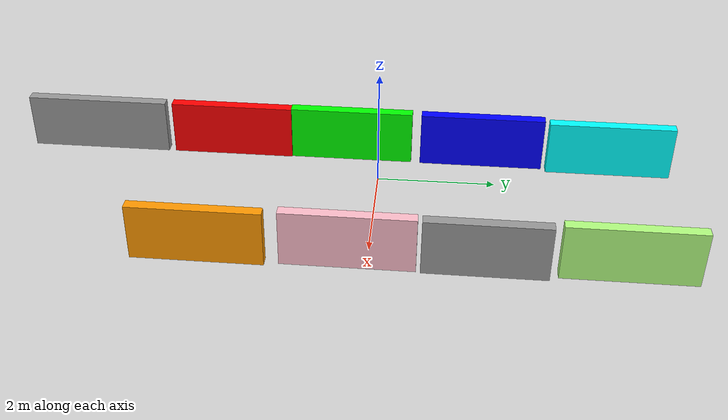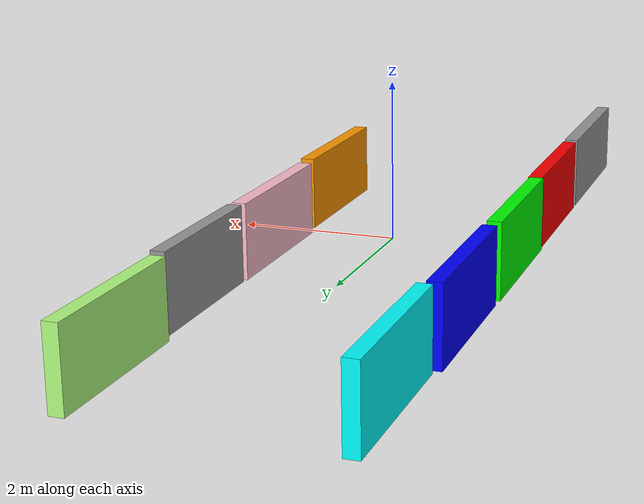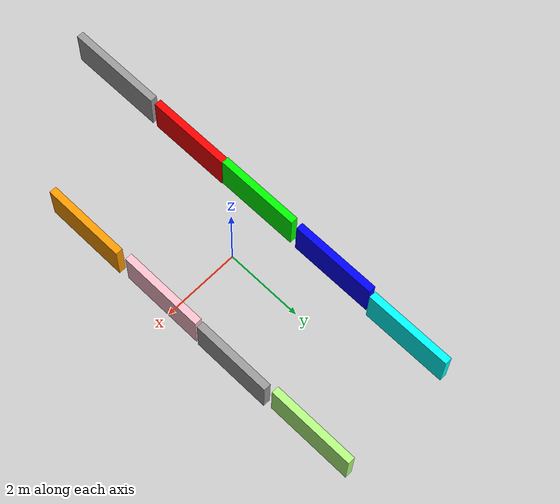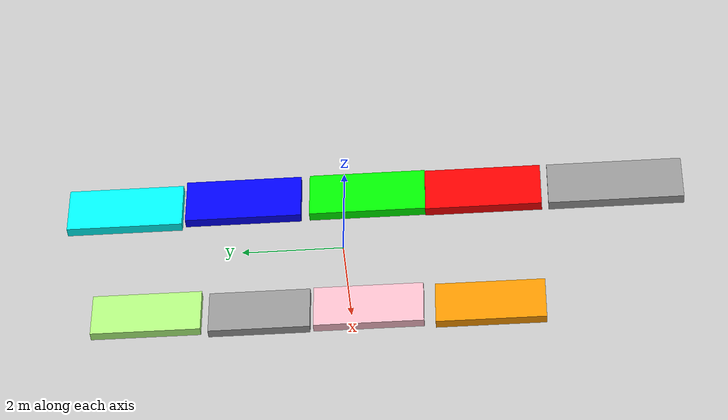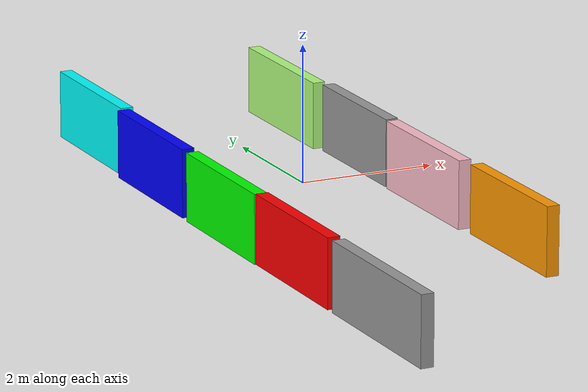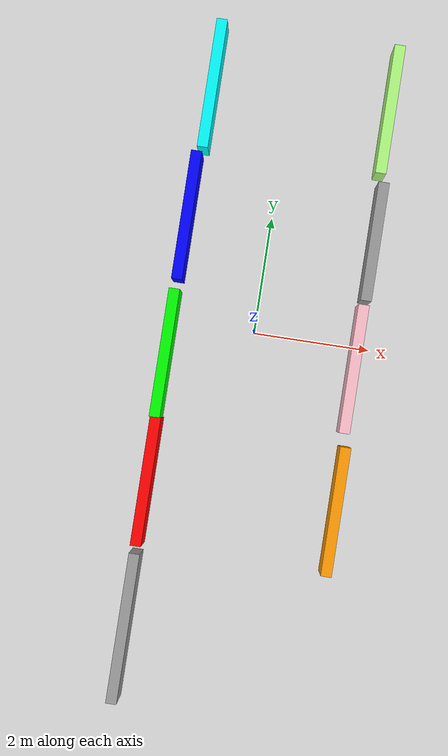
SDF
<?xml version='1.0'?>
<sdf version='1.7'>
  <model name='colored'>
    <model name='new_hospital_colored'>
      <link name='link_0'>
        <inertial>
          <mass>0.414748</mass>
          <inertia>
            <ixx>0.204858</ixx>
            <ixy>0</ixy>
            <ixz>0</ixz>
            <iyy>0.0357692</iyy>
            <iyz>0</iyz>
            <izz>0.171503</izz>
          </inertia>
          <pose>0 0 0 0 -0 0</pose>
        </inertial>
        <pose>1.84226 -2.81221 -5e-06 0 -0 0</pose>
        <self_collide>0</self_collide>
        <enable_wind>0</enable_wind>
        <kinematic>0</kinematic>
        <gravity>1</gravity>
        <visual name='visual'>
          <pose>0 0 0 0 -0 0</pose>
          <geometry>
            <box>
              <size>0.186869 2.21973 1</size>
            </box>
          </geometry>
          <material>
            <lighting>1</lighting>
            <script>
              <uri>file://media/materials/scripts/gazebo.material</uri>
              <name>Gazebo/Grey</name>
            </script>
            <shader type='pixel'>
              <normal_map>__default__</normal_map>
            </shader>
            <ambient>1 0.6 0 1</ambient>
            <diffuse>1 0.6 0 1</diffuse>
            <specular>1 0.6 0 1</specular>
            <emissive>0 0 0 1</emissive>
          </material>
          <transparency>0</transparency>
          <cast_shadows>1</cast_shadows>
        </visual>
        <collision name='collision'>
          <laser_retro>0</laser_retro>
          <max_contacts>10</max_contacts>
          <pose>0 0 0 0 -0 0</pose>
          <geometry>
            <box>
              <size>0.186869 2.21973 1</size>
            </box>
          </geometry>
          <surface>
            <friction>
              <ode>
                <mu>1</mu>
                <mu2>1</mu2>
                <fdir1>0 0 0</fdir1>
                <slip1>0</slip1>
                <slip2>0</slip2>
              </ode>
              <torsional>
                <coefficient>1</coefficient>
                <patch_radius>0</patch_radius>
                <surface_radius>0</surface_radius>
                <use_patch_radius>1</use_patch_radius>
                <ode>
                  <slip>0</slip>
                </ode>
              </torsional>
            </friction>
            <bounce>
              <restitution_coefficient>0</restitution_coefficient>
              <threshold>1e+06</threshold>
            </bounce>
            <contact>
              <collide_without_contact>0</collide_without_contact>
              <collide_without_contact_bitmask>1</collide_without_contact_bitmask>
              <collide_bitmask>1</collide_bitmask>
              <ode>
                <soft_cfm>0</soft_cfm>
                <soft_erp>0.2</soft_erp>
                <kp>1e+13</kp>
                <kd>1</kd>
                <max_vel>0.01</max_vel>
                <min_depth>0</min_depth>
              </ode>
              <bullet>
                <split_impulse>1</split_impulse>
                <split_impulse_penetration_threshold>-0.01</split_impulse_penetration_threshold>
                <soft_cfm>0</soft_cfm>
                <soft_erp>0.2</soft_erp>
                <kp>1e+13</kp>
                <kd>1</kd>
              </bullet>
            </contact>
          </surface>
        </collision>
      </link>
      <link name='link_0_clone'>
        <inertial>
          <mass>0.414748</mass>
          <inertia>
            <ixx>0.204858</ixx>
            <ixy>0</ixy>
            <ixz>0</ixz>
            <iyy>0.0357692</iyy>
            <iyz>0</iyz>
            <izz>0.171503</izz>
          </inertia>
          <pose>0 0 0 0 -0 0</pose>
        </inertial>
        <pose>1.7803 -0.361314 0 0 -0 0</pose>
        <gravity>1</gravity>
        <self_collide>0</self_collide>
        <kinematic>0</kinematic>
        <enable_wind>0</enable_wind>
        <visual name='visual'>
          <pose>0 0 0 0 -0 0</pose>
          <geometry>
            <box>
              <size>0.186869 2.21973 1</size>
            </box>
          </geometry>
          <material>
            <lighting>1</lighting>
            <script>
              <uri>file://media/materials/scripts/gazebo.material</uri>
              <name>Gazebo/Grey</name>
            </script>
            <shader type='pixel'>
              <normal_map>__default__</normal_map>
            </shader>
            <ambient>1 0.75 0.8 0</ambient>
            <diffuse>1 0.75 0.8 1</diffuse>
            <specular>1 0.75 0.8 1</specular>
            <emissive>0.8 0 0 1</emissive>
          </material>
          <transparency>0</transparency>
          <cast_shadows>1</cast_shadows>
        </visual>
        <collision name='collision'>
          <laser_retro>0</laser_retro>
          <max_contacts>10</max_contacts>
          <pose>0 0 0 0 -0 0</pose>
          <geometry>
            <box>
              <size>0.186869 2.21973 1</size>
            </box>
          </geometry>
          <surface>
            <friction>
              <ode>
                <mu>1</mu>
                <mu2>1</mu2>
                <fdir1>0 0 0</fdir1>
                <slip1>0</slip1>
                <slip2>0</slip2>
              </ode>
              <torsional>
                <coefficient>1</coefficient>
                <patch_radius>0</patch_radius>
                <surface_radius>0</surface_radius>
                <use_patch_radius>1</use_patch_radius>
                <ode>
                  <slip>0</slip>
                </ode>
              </torsional>
            </friction>
            <bounce>
              <restitution_coefficient>0</restitution_coefficient>
              <threshold>1e+06</threshold>
            </bounce>
            <contact>
              <collide_without_contact>0</collide_without_contact>
              <collide_without_contact_bitmask>1</collide_without_contact_bitmask>
              <collide_bitmask>1</collide_bitmask>
              <ode>
                <soft_cfm>0</soft_cfm>
                <soft_erp>0.2</soft_erp>
                <kp>1e+13</kp>
                <kd>1</kd>
                <max_vel>0.01</max_vel>
                <min_depth>0</min_depth>
              </ode>
              <bullet>
                <split_impulse>1</split_impulse>
                <split_impulse_penetration_threshold>-0.01</split_impulse_penetration_threshold>
                <soft_cfm>0</soft_cfm>
                <soft_erp>0.2</soft_erp>
                <kp>1e+13</kp>
                <kd>1</kd>
              </bullet>
            </contact>
          </surface>
        </collision>
      </link>
      <link name='link_0_clone_0'>
        <inertial>
          <mass>0.382783</mass>
          <inertia>
            <ixx>0.165777</ixx>
            <ixy>0</ixy>
            <ixz>0</ixz>
            <iyy>0.0330125</iyy>
            <iyz>0</iyz>
            <izz>0.134992</izz>
          </inertia>
          <pose>0 0 0 0 -0 0</pose>
        </inertial>
        <pose>1.80143 1.84381 0 0 -0 0</pose>
        <gravity>1</gravity>
        <self_collide>0</self_collide>
        <kinematic>0</kinematic>
        <enable_wind>0</enable_wind>
        <visual name='visual'>
          <pose>0 0 0 0 -0 0</pose>
          <geometry>
            <box>
              <size>0.186869 2.04866 1</size>
            </box>
          </geometry>
          <material>
            <lighting>1</lighting>
            <script>
              <uri>file://media/materials/scripts/gazebo.material</uri>
              <name>Gazebo/Grey</name>
            </script>
            <shader type='pixel'>
              <normal_map>__default__</normal_map>
            </shader>
            <ambient>0 0 0 1</ambient>
            <diffuse>0 0 0 1</diffuse>
            <specular>0 0 0 1</specular>
            <emissive>0 0 0 1</emissive>
          </material>
          <transparency>0</transparency>
          <cast_shadows>1</cast_shadows>
        </visual>
        <collision name='collision'>
          <laser_retro>0</laser_retro>
          <max_contacts>10</max_contacts>
          <pose>0 0 0 0 -0 0</pose>
          <geometry>
            <box>
              <size>0.186869 2.04866 1</size>
            </box>
          </geometry>
          <surface>
            <friction>
              <ode>
                <mu>1</mu>
                <mu2>1</mu2>
                <fdir1>0 0 0</fdir1>
                <slip1>0</slip1>
                <slip2>0</slip2>
              </ode>
              <torsional>
                <coefficient>1</coefficient>
                <patch_radius>0</patch_radius>
                <surface_radius>0</surface_radius>
                <use_patch_radius>1</use_patch_radius>
                <ode>
                  <slip>0</slip>
                </ode>
              </torsional>
            </friction>
            <bounce>
              <restitution_coefficient>0</restitution_coefficient>
              <threshold>1e+06</threshold>
            </bounce>
            <contact>
              <collide_without_contact>0</collide_without_contact>
              <collide_without_contact_bitmask>1</collide_without_contact_bitmask>
              <collide_bitmask>1</collide_bitmask>
              <ode>
                <soft_cfm>0</soft_cfm>
                <soft_erp>0.2</soft_erp>
                <kp>1e+13</kp>
                <kd>1</kd>
                <max_vel>0.01</max_vel>
                <min_depth>0</min_depth>
              </ode>
              <bullet>
                <split_impulse>1</split_impulse>
                <split_impulse_penetration_threshold>-0.01</split_impulse_penetration_threshold>
                <soft_cfm>0</soft_cfm>
                <soft_erp>0.2</soft_erp>
                <kp>1e+13</kp>
                <kd>1</kd>
              </bullet>
            </contact>
          </surface>
        </collision>
      </link>
      <link name='link_0_clone_1'>
        <inertial>
          <mass>0.414748</mass>
          <inertia>
            <ixx>0.204858</ixx>
            <ixy>0</ixy>
            <ixz>0</ixz>
            <iyy>0.0357692</iyy>
            <iyz>0</iyz>
            <izz>0.171503</izz>
          </inertia>
          <pose>0 0 0 0 -0 0</pose>
        </inertial>
        <pose>1.7185 4.12304 0 0 -0 0</pose>
        <gravity>1</gravity>
        <self_collide>0</self_collide>
        <kinematic>0</kinematic>
        <enable_wind>0</enable_wind>
        <visual name='visual'>
          <pose>0 0 0 0 -0 0</pose>
          <geometry>
            <box>
              <size>0.186869 2.21973 1</size>
            </box>
          </geometry>
          <material>
            <lighting>1</lighting>
            <script>
              <uri>file://media/materials/scripts/gazebo.material</uri>
              <name>Gazebo/Grey</name>
            </script>
            <shader type='pixel'>
              <normal_map>__default__</normal_map>
            </shader>
            <ambient>0.7 1 0.5 0</ambient>
            <diffuse>0.7 1 0.5 1</diffuse>
            <specular>0.7 1 0.5 1</specular>
            <emissive>0 0 0 1</emissive>
          </material>
          <transparency>0</transparency>
          <cast_shadows>1</cast_shadows>
        </visual>
        <collision name='collision'>
          <laser_retro>0</laser_retro>
          <max_contacts>10</max_contacts>
          <pose>0 0 0 0 -0 0</pose>
          <geometry>
            <box>
              <size>0.186869 2.21973 1</size>
            </box>
          </geometry>
          <surface>
            <friction>
              <ode>
                <mu>1</mu>
                <mu2>1</mu2>
                <fdir1>0 0 0</fdir1>
                <slip1>0</slip1>
                <slip2>0</slip2>
              </ode>
              <torsional>
                <coefficient>1</coefficient>
                <patch_radius>0</patch_radius>
                <surface_radius>0</surface_radius>
                <use_patch_radius>1</use_patch_radius>
                <ode>
                  <slip>0</slip>
                </ode>
              </torsional>
            </friction>
            <bounce>
              <restitution_coefficient>0</restitution_coefficient>
              <threshold>1e+06</threshold>
            </bounce>
            <contact>
              <collide_without_contact>0</collide_without_contact>
              <collide_without_contact_bitmask>1</collide_without_contact_bitmask>
              <collide_bitmask>1</collide_bitmask>
              <ode>
                <soft_cfm>0</soft_cfm>
                <soft_erp>0.2</soft_erp>
                <kp>1e+13</kp>
                <kd>1</kd>
                <max_vel>0.01</max_vel>
                <min_depth>0</min_depth>
              </ode>
              <bullet>
                <split_impulse>1</split_impulse>
                <split_impulse_penetration_threshold>-0.01</split_impulse_penetration_threshold>
                <soft_cfm>0</soft_cfm>
                <soft_erp>0.2</soft_erp>
                <kp>1e+13</kp>
                <kd>1</kd>
              </bullet>
            </contact>
          </surface>
        </collision>
      </link>
      <link name='link_0_clone_2'>
        <inertial>
          <mass>0.414748</mass>
          <inertia>
            <ixx>0.204858</ixx>
            <ixy>0</ixy>
            <ixz>0</ixz>
            <iyy>0.0357692</iyy>
            <iyz>0</iyz>
            <izz>0.171503</izz>
          </inertia>
          <pose>0 0 0 0 -0 0</pose>
        </inertial>
        <pose>-1.36129 4.10227 0 0 -0 0</pose>
        <gravity>1</gravity>
        <self_collide>0</self_collide>
        <kinematic>0</kinematic>
        <enable_wind>0</enable_wind>
        <visual name='visual'>
          <pose>0 0 0 0 -0 0</pose>
          <geometry>
            <box>
              <size>0.186869 2.21973 1</size>
            </box>
          </geometry>
          <material>
            <lighting>1</lighting>
            <script>
              <uri>file://media/materials/scripts/gazebo.material</uri>
              <name>Gazebo/Grey</name>
            </script>
            <shader type='pixel'>
              <normal_map>__default__</normal_map>
            </shader>
            <ambient>0 1 1 1</ambient>
            <diffuse>0 1 1 1</diffuse>
            <specular>0 1 1 1</specular>
            <emissive>0 1 1 1</emissive>
          </material>
          <transparency>0</transparency>
          <cast_shadows>1</cast_shadows>
        </visual>
        <collision name='collision'>
          <laser_retro>0</laser_retro>
          <max_contacts>10</max_contacts>
          <pose>0 0 0 0 -0 0</pose>
          <geometry>
            <box>
              <size>0.186869 2.21973 1</size>
            </box>
          </geometry>
          <surface>
            <friction>
              <ode>
                <mu>1</mu>
                <mu2>1</mu2>
                <fdir1>0 0 0</fdir1>
                <slip1>0</slip1>
                <slip2>0</slip2>
              </ode>
              <torsional>
                <coefficient>1</coefficient>
                <patch_radius>0</patch_radius>
                <surface_radius>0</surface_radius>
                <use_patch_radius>1</use_patch_radius>
                <ode>
                  <slip>0</slip>
                </ode>
              </torsional>
            </friction>
            <bounce>
              <restitution_coefficient>0</restitution_coefficient>
              <threshold>1e+06</threshold>
            </bounce>
            <contact>
              <collide_without_contact>0</collide_without_contact>
              <collide_without_contact_bitmask>1</collide_without_contact_bitmask>
              <collide_bitmask>1</collide_bitmask>
              <ode>
                <soft_cfm>0</soft_cfm>
                <soft_erp>0.2</soft_erp>
                <kp>1e+13</kp>
                <kd>1</kd>
                <max_vel>0.01</max_vel>
                <min_depth>0</min_depth>
              </ode>
              <bullet>
                <split_impulse>1</split_impulse>
                <split_impulse_penetration_threshold>-0.01</split_impulse_penetration_threshold>
                <soft_cfm>0</soft_cfm>
                <soft_erp>0.2</soft_erp>
                <kp>1e+13</kp>
                <kd>1</kd>
              </bullet>
            </contact>
          </surface>
        </collision>
      </link>
      <link name='link_0_clone_3'>
        <inertial>
          <mass>0.414748</mass>
          <inertia>
            <ixx>0.204858</ixx>
            <ixy>0</ixy>
            <ixz>0</ixz>
            <iyy>0.0357692</iyy>
            <iyz>0</iyz>
            <izz>0.171503</izz>
          </inertia>
          <pose>0 0 0 0 -0 0</pose>
        </inertial>
        <pose>-1.44691 1.80439 0 0 -0 0</pose>
        <gravity>1</gravity>
        <self_collide>0</self_collide>
        <kinematic>0</kinematic>
        <enable_wind>0</enable_wind>
        <visual name='visual'>
          <pose>0 0 0 0 -0 0</pose>
          <geometry>
            <box>
              <size>0.186869 2.21973 1</size>
            </box>
          </geometry>
          <material>
            <lighting>1</lighting>
            <script>
              <uri>file://media/materials/scripts/gazebo.material</uri>
              <name>Gazebo/Grey</name>
            </script>
            <shader type='pixel'>
              <normal_map>__default__</normal_map>
            </shader>
            <ambient>0 0 1 0</ambient>
            <diffuse>0 0 1 1</diffuse>
            <specular>0 0 1 1</specular>
            <emissive>0 0 1 1</emissive>
          </material>
          <transparency>0</transparency>
          <cast_shadows>1</cast_shadows>
        </visual>
        <collision name='collision'>
          <laser_retro>0</laser_retro>
          <max_contacts>10</max_contacts>
          <pose>0 0 0 0 -0 0</pose>
          <geometry>
            <box>
              <size>0.186869 2.21973 1</size>
            </box>
          </geometry>
          <surface>
            <friction>
              <ode>
                <mu>1</mu>
                <mu2>1</mu2>
                <fdir1>0 0 0</fdir1>
                <slip1>0</slip1>
                <slip2>0</slip2>
              </ode>
              <torsional>
                <coefficient>1</coefficient>
                <patch_radius>0</patch_radius>
                <surface_radius>0</surface_radius>
                <use_patch_radius>1</use_patch_radius>
                <ode>
                  <slip>0</slip>
                </ode>
              </torsional>
            </friction>
            <bounce>
              <restitution_coefficient>0</restitution_coefficient>
              <threshold>1e+06</threshold>
            </bounce>
            <contact>
              <collide_without_contact>0</collide_without_contact>
              <collide_without_contact_bitmask>1</collide_without_contact_bitmask>
              <collide_bitmask>1</collide_bitmask>
              <ode>
                <soft_cfm>0</soft_cfm>
                <soft_erp>0.2</soft_erp>
                <kp>1e+13</kp>
                <kd>1</kd>
                <max_vel>0.01</max_vel>
                <min_depth>0</min_depth>
              </ode>
              <bullet>
                <split_impulse>1</split_impulse>
                <split_impulse_penetration_threshold>-0.01</split_impulse_penetration_threshold>
                <soft_cfm>0</soft_cfm>
                <soft_erp>0.2</soft_erp>
                <kp>1e+13</kp>
                <kd>1</kd>
              </bullet>
            </contact>
          </surface>
        </collision>
      </link>
      <link name='link_0_clone_4'>
        <inertial>
          <mass>0.414748</mass>
          <inertia>
            <ixx>0.204858</ixx>
            <ixy>0</ixy>
            <ixz>0</ixz>
            <iyy>0.0357692</iyy>
            <iyz>0</iyz>
            <izz>0.171503</izz>
          </inertia>
          <pose>0 0 0 0 -0 0</pose>
        </inertial>
        <pose>-1.45938 -0.581161 0 0 -0 0</pose>
        <gravity>1</gravity>
        <self_collide>0</self_collide>
        <kinematic>0</kinematic>
        <enable_wind>0</enable_wind>
        <visual name='visual'>
          <pose>0 0 0 0 -0 0</pose>
          <geometry>
            <box>
              <size>0.186869 2.21973 1</size>
            </box>
          </geometry>
          <material>
            <lighting>1</lighting>
            <script>
              <uri>file://media/materials/scripts/gazebo.material</uri>
              <name>Gazebo/Grey</name>
            </script>
            <shader type='pixel'>
              <normal_map>__default__</normal_map>
            </shader>
            <ambient>0 1 0 1</ambient>
            <diffuse>0 1 0 1</diffuse>
            <specular>0 1 0 1</specular>
            <emissive>0 1 0 1</emissive>
          </material>
          <transparency>0</transparency>
          <cast_shadows>1</cast_shadows>
        </visual>
        <collision name='collision'>
          <laser_retro>0</laser_retro>
          <max_contacts>10</max_contacts>
          <pose>0 0 0 0 -0 0</pose>
          <geometry>
            <box>
              <size>0.186869 2.21973 1</size>
            </box>
          </geometry>
          <surface>
            <friction>
              <ode>
                <mu>1</mu>
                <mu2>1</mu2>
                <fdir1>0 0 0</fdir1>
                <slip1>0</slip1>
                <slip2>0</slip2>
              </ode>
              <torsional>
                <coefficient>1</coefficient>
                <patch_radius>0</patch_radius>
                <surface_radius>0</surface_radius>
                <use_patch_radius>1</use_patch_radius>
                <ode>
                  <slip>0</slip>
                </ode>
              </torsional>
            </friction>
            <bounce>
              <restitution_coefficient>0</restitution_coefficient>
              <threshold>1e+06</threshold>
            </bounce>
            <contact>
              <collide_without_contact>0</collide_without_contact>
              <collide_without_contact_bitmask>1</collide_without_contact_bitmask>
              <collide_bitmask>1</collide_bitmask>
              <ode>
                <soft_cfm>0</soft_cfm>
                <soft_erp>0.2</soft_erp>
                <kp>1e+13</kp>
                <kd>1</kd>
                <max_vel>0.01</max_vel>
                <min_depth>0</min_depth>
              </ode>
              <bullet>
                <split_impulse>1</split_impulse>
                <split_impulse_penetration_threshold>-0.01</split_impulse_penetration_threshold>
                <soft_cfm>0</soft_cfm>
                <soft_erp>0.2</soft_erp>
                <kp>1e+13</kp>
                <kd>1</kd>
              </bullet>
            </contact>
          </surface>
        </collision>
      </link>
      <link name='link_0_clone_5'>
        <inertial>
          <mass>0.414748</mass>
          <inertia>
            <ixx>0.204858</ixx>
            <ixy>0</ixy>
            <ixz>0</ixz>
            <iyy>0.0357692</iyy>
            <iyz>0</iyz>
            <izz>0.171503</izz>
          </inertia>
          <pose>0 0 0 0 -0 0</pose>
        </inertial>
        <pose>-1.43892 -2.79742 0 0 -0 0</pose>
        <gravity>1</gravity>
        <self_collide>0</self_collide>
        <kinematic>0</kinematic>
        <enable_wind>0</enable_wind>
        <visual name='visual'>
          <pose>0 0 0 0 -0 0</pose>
          <geometry>
            <box>
              <size>0.186869 2.21973 1</size>
            </box>
          </geometry>
          <material>
            <lighting>1</lighting>
            <script>
              <uri>file://media/materials/scripts/gazebo.material</uri>
              <name>Gazebo/Grey</name>
            </script>
            <shader type='pixel'>
              <normal_map>__default__</normal_map>
            </shader>
            <ambient>1 0 0 0</ambient>
            <diffuse>1 0 0 1</diffuse>
            <specular>1 0 0 1</specular>
            <emissive>1 0 0 1</emissive>
          </material>
          <transparency>0</transparency>
          <cast_shadows>1</cast_shadows>
        </visual>
        <collision name='collision'>
          <laser_retro>0</laser_retro>
          <max_contacts>10</max_contacts>
          <pose>0 0 0 0 -0 0</pose>
          <geometry>
            <box>
              <size>0.186869 2.21973 1</size>
            </box>
          </geometry>
          <surface>
            <friction>
              <ode>
                <mu>1</mu>
                <mu2>1</mu2>
                <fdir1>0 0 0</fdir1>
                <slip1>0</slip1>
                <slip2>0</slip2>
              </ode>
              <torsional>
                <coefficient>1</coefficient>
                <patch_radius>0</patch_radius>
                <surface_radius>0</surface_radius>
                <use_patch_radius>1</use_patch_radius>
                <ode>
                  <slip>0</slip>
                </ode>
              </torsional>
            </friction>
            <bounce>
              <restitution_coefficient>0</restitution_coefficient>
              <threshold>1e+06</threshold>
            </bounce>
            <contact>
              <collide_without_contact>0</collide_without_contact>
              <collide_without_contact_bitmask>1</collide_without_contact_bitmask>
              <collide_bitmask>1</collide_bitmask>
              <ode>
                <soft_cfm>0</soft_cfm>
                <soft_erp>0.2</soft_erp>
                <kp>1e+13</kp>
                <kd>1</kd>
                <max_vel>0.01</max_vel>
                <min_depth>0</min_depth>
              </ode>
              <bullet>
                <split_impulse>1</split_impulse>
                <split_impulse_penetration_threshold>-0.01</split_impulse_penetration_threshold>
                <soft_cfm>0</soft_cfm>
                <soft_erp>0.2</soft_erp>
                <kp>1e+13</kp>
                <kd>1</kd>
              </bullet>
            </contact>
          </surface>
        </collision>
      </link>
      <link name='link_0_clone_6'>
        <inertial>
          <mass>0.480228</mass>
          <inertia>
            <ixx>0.304378</ixx>
            <ixy>0</ixy>
            <ixz>0</ixz>
            <iyy>0.0414165</iyy>
            <iyz>0</iyz>
            <izz>0.265756</izz>
          </inertia>
          <pose>0 0 0 0 -0 0</pose>
        </inertial>
        <pose>-1.436 -5.32138 0 0 -0 0</pose>
        <gravity>1</gravity>
        <self_collide>0</self_collide>
        <kinematic>0</kinematic>
        <enable_wind>0</enable_wind>
        <visual name='visual'>
          <pose>0 0 0 0 -0 0</pose>
          <geometry>
            <box>
              <size>0.186869 2.57018 1</size>
            </box>
          </geometry>
          <material>
            <lighting>1</lighting>
            <script>
              <uri>file://media/materials/scripts/gazebo.material</uri>
              <name>Gazebo/Grey</name>
            </script>
            <shader type='pixel'>
              <normal_map>__default__</normal_map>
            </shader>
            <ambient>1 1 1 1</ambient>
            <diffuse>1 1 1 1</diffuse>
            <specular>1 1 1 1</specular>
            <emissive>0 0 0 1</emissive>
          </material>
          <transparency>0</transparency>
          <cast_shadows>1</cast_shadows>
        </visual>
        <collision name='collision'>
          <laser_retro>0</laser_retro>
          <max_contacts>10</max_contacts>
          <pose>0 0 0 0 -0 0</pose>
          <geometry>
            <box>
              <size>0.186869 2.57018 1</size>
            </box>
          </geometry>
          <surface>
            <friction>
              <ode>
                <mu>1</mu>
                <mu2>1</mu2>
                <fdir1>0 0 0</fdir1>
                <slip1>0</slip1>
                <slip2>0</slip2>
              </ode>
              <torsional>
                <coefficient>1</coefficient>
                <patch_radius>0</patch_radius>
                <surface_radius>0</surface_radius>
                <use_patch_radius>1</use_patch_radius>
                <ode>
                  <slip>0</slip>
                </ode>
              </torsional>
            </friction>
            <bounce>
              <restitution_coefficient>0</restitution_coefficient>
              <threshold>1e+06</threshold>
            </bounce>
            <contact>
              <collide_without_contact>0</collide_without_contact>
              <collide_without_contact_bitmask>1</collide_without_contact_bitmask>
              <collide_bitmask>1</collide_bitmask>
              <ode>
                <soft_cfm>0</soft_cfm>
                <soft_erp>0.2</soft_erp>
                <kp>1e+13</kp>
                <kd>1</kd>
                <max_vel>0.01</max_vel>
                <min_depth>0</min_depth>
              </ode>
              <bullet>
                <split_impulse>1</split_impulse>
                <split_impulse_penetration_threshold>-0.01</split_impulse_penetration_threshold>
                <soft_cfm>0</soft_cfm>
                <soft_erp>0.2</soft_erp>
                <kp>1e+13</kp>
                <kd>1</kd>
              </bullet>
            </contact>
          </surface>
        </collision>
      </link>
      <static>0</static>
      <allow_auto_disable>1</allow_auto_disable>
      <pose>-4e-06 -1e-06 4e-06 0 -0 0</pose>
    </model>
    <static>0</static>
    <allow_auto_disable>1</allow_auto_disable>
  </model>
</sdf>
